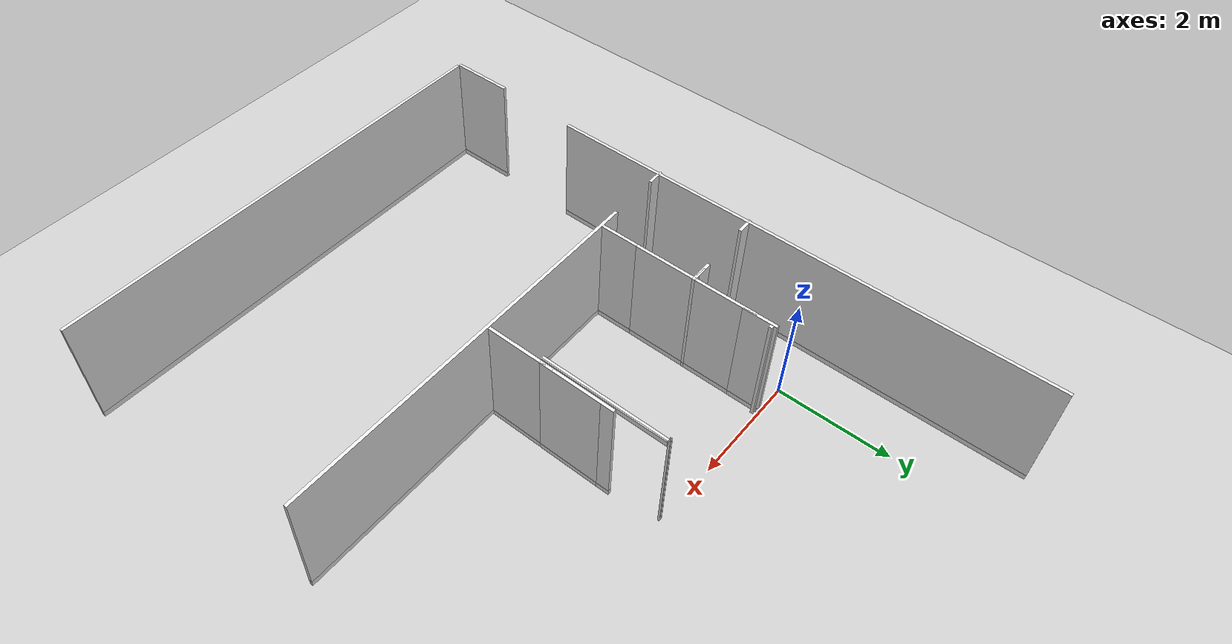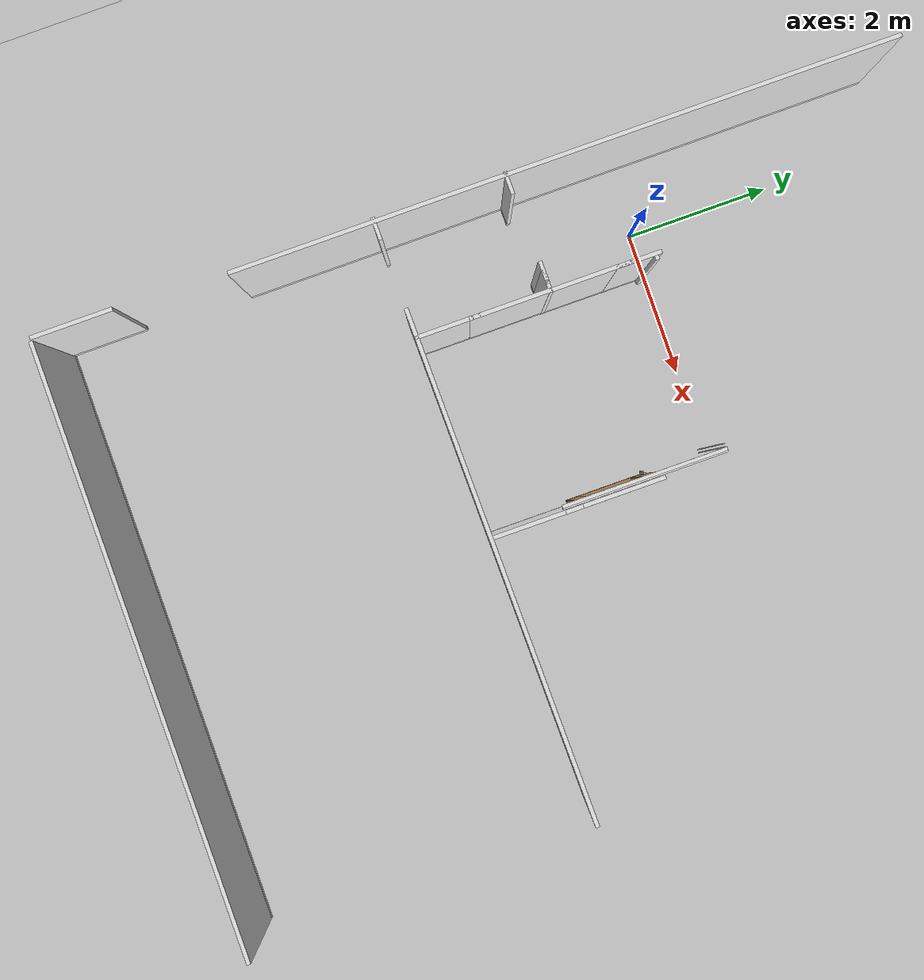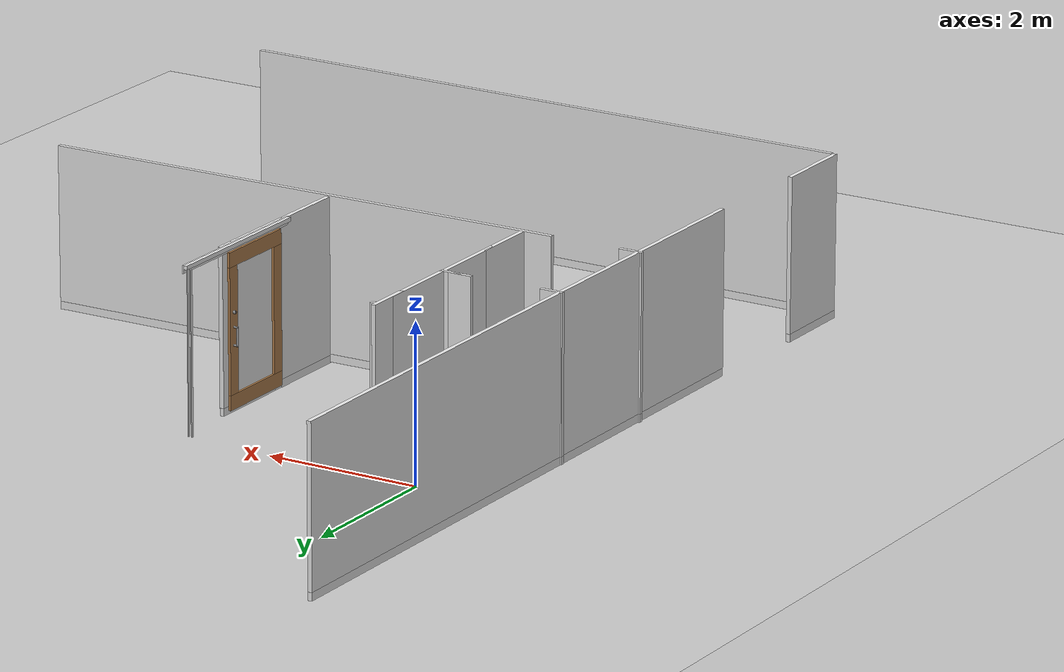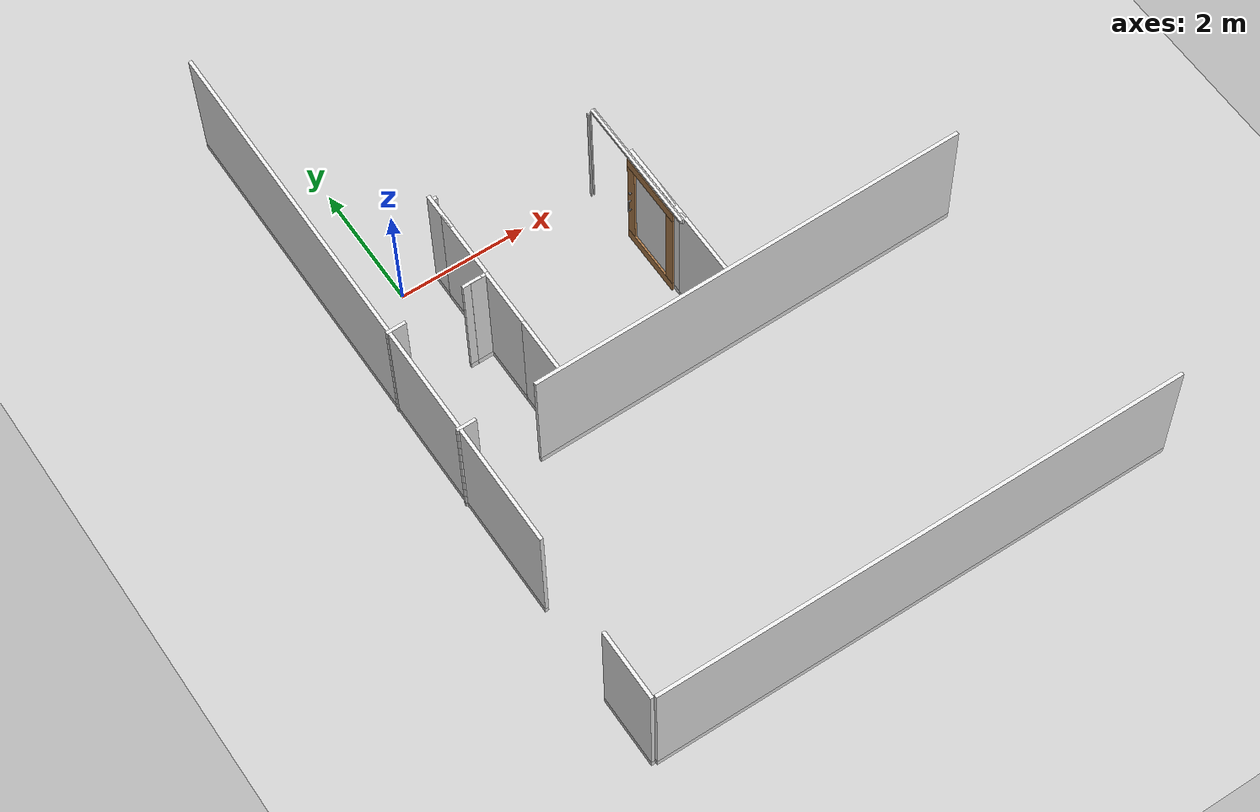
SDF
<sdf version="1.6">
 <world name="default">
  <model name="ground_plane">
   <static>1</static>
   <link name="link">
    <collision name="collision">
     <geometry><plane><normal>0 0 1</normal><size>100 100</size></plane></geometry>
     <surface><friction><ode><mu>100</mu><mu2>50</mu2></ode></friction></surface>
    </collision>
    <visual name="visual">
     <cast_shadows>0</cast_shadows>
     <geometry><plane><normal>0 0 1</normal><size>100 100</size></plane></geometry>
     <material>
      <script><uri>file://media/materials/scripts/gazebo.material</uri><name>Gazebo/Grey</name></script>
     </material>
    </visual>
   </link>
  </model>
  <model name="slim_wall_0_clone">
   <link name="link">
    <pose>-1.21711 0.435553 0 0 -0 0</pose>
    <inertial>
     <mass>12.4167</mass>
     <inertia><ixx>0</ixx><ixy>0</ixy><ixz>0</ixz><iyy>0</iyy><iyz>0</iyz><izz>0</izz></inertia>
    </inertial>
    <velocity_decay><linear>0</linear><angular>0</angular></velocity_decay>
    <visual name="bottom_frame">
     <pose>0 0 0.05 0 -0 0</pose>
     <geometry><box><size>0.048855 0.300624 0.1</size></box></geometry>
     <material>
      <script><uri>model://base_materials/color/scripts</uri><name>hsr_color/white</name></script>
      <ambient>1 1 1 1</ambient>
      <diffuse>0.5 0.5 0.5 1</diffuse>
      <specular>0 0 0 1</specular>
      <emissive>0 0 0 1</emissive>
     </material>
    </visual>
    <visual name="wall">
     <pose>0 0 1.095 0 -0 0</pose>
     <geometry><box><size>0.048855 0.300624 1.99</size></box></geometry>
     <material>
      <script>
       <uri>model://base_materials/wall/scripts</uri>
       <uri>model://base_materials/wall/textures</uri>
       <name>wall/white_noise</name>
      </script>
      <ambient>1 1 1 1</ambient>
      <diffuse>0.5 0.5 0.5 1</diffuse>
      <specular>0 0 0 1</specular>
      <emissive>0 0 0 1</emissive>
     </material>
    </visual>
    <collision name="collision_bottom_frame">
     <pose>0 0 0.05 0 -0 0</pose>
     <geometry><box><size>0.048855 0.300624 0.1</size></box></geometry>
     <surface>
      <friction>
       <ode><mu>1</mu><mu2>1</mu2><fdir1>0 0 0</fdir1><slip1>0</slip1><slip2>0</slip2></ode>
       <torsional>
        <coefficient>1</coefficient>
        <patch_radius>0</patch_radius>
        <surface_radius>0</surface_radius>
        <use_patch_radius>1</use_patch_radius>
        <ode><slip>0</slip></ode>
       </torsional>
      </friction>
      <bounce><restitution_coefficient>0</restitution_coefficient><threshold>1e+06</threshold></bounce>
      <contact>
       <collide_without_contact>0</collide_without_contact>
       <collide_without_contact_bitmask>1</collide_without_contact_bitmask>
       <collide_bitmask>1</collide_bitmask>
       <ode>
        <soft_cfm>0</soft_cfm>
        <soft_erp>0.2</soft_erp>
        <kp>1e+13</kp>
        <kd>1</kd>
        <max_vel>0.01</max_vel>
        <min_depth>0</min_depth>
       </ode>
       <bullet>
        <split_impulse>1</split_impulse>
        <split_impulse_penetration_threshold>-0.01</split_impulse_penetration_threshold>
        <soft_cfm>0</soft_cfm>
        <soft_erp>0.2</soft_erp>
        <kp>1e+13</kp>
        <kd>1</kd>
       </bullet>
      </contact>
     </surface>
    </collision>
    <collision name="collision_wall">
     <pose>0 0 1.095 0 -0 0</pose>
     <geometry><box><size>0.048855 0.300624 1.99</size></box></geometry>
     <surface>
      <friction>
       <ode><mu>1</mu><mu2>1</mu2><fdir1>0 0 0</fdir1><slip1>0</slip1><slip2>0</slip2></ode>
       <torsional>
        <coefficient>1</coefficient>
        <patch_radius>0</patch_radius>
        <surface_radius>0</surface_radius>
        <use_patch_radius>1</use_patch_radius>
        <ode><slip>0</slip></ode>
       </torsional>
      </friction>
      <bounce><restitution_coefficient>0</restitution_coefficient><threshold>1e+06</threshold></bounce>
      <contact>
       <collide_without_contact>0</collide_without_contact>
       <collide_without_contact_bitmask>1</collide_without_contact_bitmask>
       <collide_bitmask>1</collide_bitmask>
       <ode>
        <soft_cfm>0</soft_cfm>
        <soft_erp>0.2</soft_erp>
        <kp>1e+13</kp>
        <kd>1</kd>
        <max_vel>0.01</max_vel>
        <min_depth>0</min_depth>
       </ode>
       <bullet>
        <split_impulse>1</split_impulse>
        <split_impulse_penetration_threshold>-0.01</split_impulse_penetration_threshold>
        <soft_cfm>0</soft_cfm>
        <soft_erp>0.2</soft_erp>
        <kp>1e+13</kp>
        <kd>1</kd>
       </bullet>
      </contact>
     </surface>
    </collision>
   </link>
   <static>1</static>
   <pose>-0.462537 -2.07643 0 0 -0 1.58512</pose>
  </model>
  <model name="slim_wall_0_clone_0">
   <link name="link">
    <pose>-1.21711 0.435553 0 0 -0 0</pose>
    <inertial>
     <mass>12.4167</mass>
     <inertia><ixx>0</ixx><ixy>0</ixy><ixz>0</ixz><iyy>0</iyy><iyz>0</iyz><izz>0</izz></inertia>
    </inertial>
    <velocity_decay><linear>0</linear><angular>0</angular></velocity_decay>
    <visual name="bottom_frame">
     <pose>0 0 0.05 0 -0 0</pose>
     <geometry><box><size>0.048855 0.300624 0.1</size></box></geometry>
     <material>
      <script><uri>model://base_materials/color/scripts</uri><name>hsr_color/white</name></script>
      <ambient>1 1 1 1</ambient>
      <diffuse>0.5 0.5 0.5 1</diffuse>
      <specular>0 0 0 1</specular>
      <emissive>0 0 0 1</emissive>
     </material>
    </visual>
    <visual name="wall">
     <pose>0 0 1.095 0 -0 0</pose>
     <geometry><box><size>0.048855 0.300624 1.99</size></box></geometry>
     <material>
      <script>
       <uri>model://base_materials/wall/scripts</uri>
       <uri>model://base_materials/wall/textures</uri>
       <name>wall/white_noise</name>
      </script>
      <ambient>1 1 1 1</ambient>
      <diffuse>0.5 0.5 0.5 1</diffuse>
      <specular>0 0 0 1</specular>
      <emissive>0 0 0 1</emissive>
     </material>
    </visual>
    <collision name="collision_bottom_frame">
     <pose>0 0 0.05 0 -0 0</pose>
     <geometry><box><size>0.048855 0.300624 0.1</size></box></geometry>
     <surface>
      <friction>
       <ode><mu>1</mu><mu2>1</mu2><fdir1>0 0 0</fdir1><slip1>0</slip1><slip2>0</slip2></ode>
       <torsional>
        <coefficient>1</coefficient>
        <patch_radius>0</patch_radius>
        <surface_radius>0</surface_radius>
        <use_patch_radius>1</use_patch_radius>
        <ode><slip>0</slip></ode>
       </torsional>
      </friction>
      <bounce><restitution_coefficient>0</restitution_coefficient><threshold>1e+06</threshold></bounce>
      <contact>
       <collide_without_contact>0</collide_without_contact>
       <collide_without_contact_bitmask>1</collide_without_contact_bitmask>
       <collide_bitmask>1</collide_bitmask>
       <ode>
        <soft_cfm>0</soft_cfm>
        <soft_erp>0.2</soft_erp>
        <kp>1e+13</kp>
        <kd>1</kd>
        <max_vel>0.01</max_vel>
        <min_depth>0</min_depth>
       </ode>
       <bullet>
        <split_impulse>1</split_impulse>
        <split_impulse_penetration_threshold>-0.01</split_impulse_penetration_threshold>
        <soft_cfm>0</soft_cfm>
        <soft_erp>0.2</soft_erp>
        <kp>1e+13</kp>
        <kd>1</kd>
       </bullet>
      </contact>
     </surface>
    </collision>
    <collision name="collision_wall">
     <pose>0 0 1.095 0 -0 0</pose>
     <geometry><box><size>0.048855 0.300624 1.99</size></box></geometry>
     <surface>
      <friction>
       <ode><mu>1</mu><mu2>1</mu2><fdir1>0 0 0</fdir1><slip1>0</slip1><slip2>0</slip2></ode>
       <torsional>
        <coefficient>1</coefficient>
        <patch_radius>0</patch_radius>
        <surface_radius>0</surface_radius>
        <use_patch_radius>1</use_patch_radius>
        <ode><slip>0</slip></ode>
       </torsional>
      </friction>
      <bounce><restitution_coefficient>0</restitution_coefficient><threshold>1e+06</threshold></bounce>
      <contact>
       <collide_without_contact>0</collide_without_contact>
       <collide_without_contact_bitmask>1</collide_without_contact_bitmask>
       <collide_bitmask>1</collide_bitmask>
       <ode>
        <soft_cfm>0</soft_cfm>
        <soft_erp>0.2</soft_erp>
        <kp>1e+13</kp>
        <kd>1</kd>
        <max_vel>0.01</max_vel>
        <min_depth>0</min_depth>
       </ode>
       <bullet>
        <split_impulse>1</split_impulse>
        <split_impulse_penetration_threshold>-0.01</split_impulse_penetration_threshold>
        <soft_cfm>0</soft_cfm>
        <soft_erp>0.2</soft_erp>
        <kp>1e+13</kp>
        <kd>1</kd>
       </bullet>
      </contact>
     </surface>
    </collision>
   </link>
   <static>1</static>
   <pose>-0.45174 -0.316156 0 0 -0 1.58512</pose>
  </model>
  <model name="slim_wall_0_clone_1">
   <link name="link">
    <pose>-1.21711 0.435553 0 0 -0 0</pose>
    <inertial>
     <mass>12.4167</mass>
     <inertia><ixx>0</ixx><ixy>0</ixy><ixz>0</ixz><iyy>0</iyy><iyz>0</iyz><izz>0</izz></inertia>
    </inertial>
    <velocity_decay><linear>0</linear><angular>0</angular></velocity_decay>
    <visual name="bottom_frame">
     <pose>0 0 0.05 0 -0 0</pose>
     <geometry><box><size>0.048855 0.300624 0.1</size></box></geometry>
     <material>
      <script><uri>model://base_materials/color/scripts</uri><name>hsr_color/white</name></script>
      <ambient>1 1 1 1</ambient>
      <diffuse>0.5 0.5 0.5 1</diffuse>
      <specular>0 0 0 1</specular>
      <emissive>0 0 0 1</emissive>
     </material>
    </visual>
    <visual name="wall">
     <pose>0 0 1.095 0 -0 0</pose>
     <geometry><box><size>0.048855 0.300624 1.99</size></box></geometry>
     <material>
      <script>
       <uri>model://base_materials/wall/scripts</uri>
       <uri>model://base_materials/wall/textures</uri>
       <name>wall/white_noise</name>
      </script>
      <ambient>1 1 1 1</ambient>
      <diffuse>0.5 0.5 0.5 1</diffuse>
      <specular>0 0 0 1</specular>
      <emissive>0 0 0 1</emissive>
     </material>
    </visual>
    <collision name="collision_bottom_frame">
     <pose>0 0 0.05 0 -0 0</pose>
     <geometry><box><size>0.048855 0.300624 0.1</size></box></geometry>
     <surface>
      <friction>
       <ode><mu>1</mu><mu2>1</mu2><fdir1>0 0 0</fdir1><slip1>0</slip1><slip2>0</slip2></ode>
       <torsional>
        <coefficient>1</coefficient>
        <patch_radius>0</patch_radius>
        <surface_radius>0</surface_radius>
        <use_patch_radius>1</use_patch_radius>
        <ode><slip>0</slip></ode>
       </torsional>
      </friction>
      <bounce><restitution_coefficient>0</restitution_coefficient><threshold>1e+06</threshold></bounce>
      <contact>
       <collide_without_contact>0</collide_without_contact>
       <collide_without_contact_bitmask>1</collide_without_contact_bitmask>
       <collide_bitmask>1</collide_bitmask>
       <ode>
        <soft_cfm>0</soft_cfm>
        <soft_erp>0.2</soft_erp>
        <kp>1e+13</kp>
        <kd>1</kd>
        <max_vel>0.01</max_vel>
        <min_depth>0</min_depth>
       </ode>
       <bullet>
        <split_impulse>1</split_impulse>
        <split_impulse_penetration_threshold>-0.01</split_impulse_penetration_threshold>
        <soft_cfm>0</soft_cfm>
        <soft_erp>0.2</soft_erp>
        <kp>1e+13</kp>
        <kd>1</kd>
       </bullet>
      </contact>
     </surface>
    </collision>
    <collision name="collision_wall">
     <pose>0 0 1.095 0 -0 0</pose>
     <geometry><box><size>0.048855 0.300624 1.99</size></box></geometry>
     <surface>
      <friction>
       <ode><mu>1</mu><mu2>1</mu2><fdir1>0 0 0</fdir1><slip1>0</slip1><slip2>0</slip2></ode>
       <torsional>
        <coefficient>1</coefficient>
        <patch_radius>0</patch_radius>
        <surface_radius>0</surface_radius>
        <use_patch_radius>1</use_patch_radius>
        <ode><slip>0</slip></ode>
       </torsional>
      </friction>
      <bounce><restitution_coefficient>0</restitution_coefficient><threshold>1e+06</threshold></bounce>
      <contact>
       <collide_without_contact>0</collide_without_contact>
       <collide_without_contact_bitmask>1</collide_without_contact_bitmask>
       <collide_bitmask>1</collide_bitmask>
       <ode>
        <soft_cfm>0</soft_cfm>
        <soft_erp>0.2</soft_erp>
        <kp>1e+13</kp>
        <kd>1</kd>
        <max_vel>0.01</max_vel>
        <min_depth>0</min_depth>
       </ode>
       <bullet>
        <split_impulse>1</split_impulse>
        <split_impulse_penetration_threshold>-0.01</split_impulse_penetration_threshold>
        <soft_cfm>0</soft_cfm>
        <soft_erp>0.2</soft_erp>
        <kp>1e+13</kp>
        <kd>1</kd>
       </bullet>
      </contact>
     </surface>
    </collision>
   </link>
   <static>1</static>
   <pose>0.754581 -0.274826 0 0 -0 1.58512</pose>
  </model>
  <model name="slim_wall_0_clone_2">
   <link name="link">
    <pose>-1.21711 0.435553 0 0 -0 0</pose>
    <inertial>
     <mass>12.4167</mass>
     <inertia><ixx>0</ixx><ixy>0</ixy><ixz>0</ixz><iyy>0</iyy><iyz>0</iyz><izz>0</izz></inertia>
    </inertial>
    <velocity_decay><linear>0</linear><angular>0</angular></velocity_decay>
    <visual name="bottom_frame">
     <pose>0 0 0.05 0 -0 0</pose>
     <geometry><box><size>0.048855 0.300624 0.1</size></box></geometry>
     <material>
      <script><uri>model://base_materials/color/scripts</uri><name>hsr_color/white</name></script>
      <ambient>1 1 1 1</ambient>
      <diffuse>0.5 0.5 0.5 1</diffuse>
      <specular>0 0 0 1</specular>
      <emissive>0 0 0 1</emissive>
     </material>
    </visual>
    <visual name="wall">
     <pose>0 0 1.095 0 -0 0</pose>
     <geometry><box><size>0.048855 0.300624 1.99</size></box></geometry>
     <material>
      <script>
       <uri>model://base_materials/wall/scripts</uri>
       <uri>model://base_materials/wall/textures</uri>
       <name>wall/white_noise</name>
      </script>
      <ambient>1 1 1 1</ambient>
      <diffuse>0.5 0.5 0.5 1</diffuse>
      <specular>0 0 0 1</specular>
      <emissive>0 0 0 1</emissive>
     </material>
    </visual>
    <collision name="collision_bottom_frame">
     <pose>0 0 0.05 0 -0 0</pose>
     <geometry><box><size>0.048855 0.300624 0.1</size></box></geometry>
     <surface>
      <friction>
       <ode><mu>1</mu><mu2>1</mu2><fdir1>0 0 0</fdir1><slip1>0</slip1><slip2>0</slip2></ode>
       <torsional>
        <coefficient>1</coefficient>
        <patch_radius>0</patch_radius>
        <surface_radius>0</surface_radius>
        <use_patch_radius>1</use_patch_radius>
        <ode><slip>0</slip></ode>
       </torsional>
      </friction>
      <bounce><restitution_coefficient>0</restitution_coefficient><threshold>1e+06</threshold></bounce>
      <contact>
       <collide_without_contact>0</collide_without_contact>
       <collide_without_contact_bitmask>1</collide_without_contact_bitmask>
       <collide_bitmask>1</collide_bitmask>
       <ode>
        <soft_cfm>0</soft_cfm>
        <soft_erp>0.2</soft_erp>
        <kp>1e+13</kp>
        <kd>1</kd>
        <max_vel>0.01</max_vel>
        <min_depth>0</min_depth>
       </ode>
       <bullet>
        <split_impulse>1</split_impulse>
        <split_impulse_penetration_threshold>-0.01</split_impulse_penetration_threshold>
        <soft_cfm>0</soft_cfm>
        <soft_erp>0.2</soft_erp>
        <kp>1e+13</kp>
        <kd>1</kd>
       </bullet>
      </contact>
     </surface>
    </collision>
    <collision name="collision_wall">
     <pose>0 0 1.095 0 -0 0</pose>
     <geometry><box><size>0.048855 0.300624 1.99</size></box></geometry>
     <surface>
      <friction>
       <ode><mu>1</mu><mu2>1</mu2><fdir1>0 0 0</fdir1><slip1>0</slip1><slip2>0</slip2></ode>
       <torsional>
        <coefficient>1</coefficient>
        <patch_radius>0</patch_radius>
        <surface_radius>0</surface_radius>
        <use_patch_radius>1</use_patch_radius>
        <ode><slip>0</slip></ode>
       </torsional>
      </friction>
      <bounce><restitution_coefficient>0</restitution_coefficient><threshold>1e+06</threshold></bounce>
      <contact>
       <collide_without_contact>0</collide_without_contact>
       <collide_without_contact_bitmask>1</collide_without_contact_bitmask>
       <collide_bitmask>1</collide_bitmask>
       <ode>
        <soft_cfm>0</soft_cfm>
        <soft_erp>0.2</soft_erp>
        <kp>1e+13</kp>
        <kd>1</kd>
        <max_vel>0.01</max_vel>
        <min_depth>0</min_depth>
       </ode>
       <bullet>
        <split_impulse>1</split_impulse>
        <split_impulse_penetration_threshold>-0.01</split_impulse_penetration_threshold>
        <soft_cfm>0</soft_cfm>
        <soft_erp>0.2</soft_erp>
        <kp>1e+13</kp>
        <kd>1</kd>
       </bullet>
      </contact>
     </surface>
    </collision>
   </link>
   <static>1</static>
   <pose>0.874173 -0.274906 0 0 -0 1.58512</pose>
  </model>
  <model name="full_wall_55_1100_2090_0">
   <link name="link">
    <inertial>
     <mass>50</mass>
     <inertia><ixx>1</ixx><ixy>0</ixy><ixz>0</ixz><iyy>1</iyy><iyz>0</iyz><izz>1</izz></inertia>
    </inertial>
    <visual name="bottom_frame">
     <pose>0 0 0.05 0 -0 0</pose>
     <geometry><box><size>0.055 1.1 0.1</size></box></geometry>
     <material>
      <script><uri>model://base_materials/color/scripts</uri><name>hsr_color/white</name></script>
     </material>
    </visual>
    <collision name="collision_bottom_frame">
     <pose>0 0 0.05 0 -0 0</pose>
     <geometry><box><size>0.055 1.1 0.1</size></box></geometry>
    </collision>
    <visual name="wall">
     <pose>0 0 1.095 0 -0 0</pose>
     <geometry><box><size>0.055 1.1 1.99</size></box></geometry>
     <material>
      <script>
       <uri>model://base_materials/wall/scripts</uri>
       <uri>model://base_materials/wall/textures</uri>
       <name>wall/white_noise</name>
      </script>
     </material>
    </visual>
    <collision name="collision_wall">
     <pose>0 0 1.095 0 -0 0</pose>
     <geometry><box><size>0.055 1.1 1.99</size></box></geometry>
    </collision>
    <velocity_decay><linear>0</linear><angular>0</angular></velocity_decay>
   </link>
   <static>1</static>
   <pose>0.574353 -2.02901 0 0 -0 0</pose>
  </model>
  <model name="full_wall_55_1100_2090_1">
   <link name="link">
    <inertial>
     <mass>50</mass>
     <inertia><ixx>1</ixx><ixy>0</ixy><ixz>0</ixz><iyy>1</iyy><iyz>0</iyz><izz>1</izz></inertia>
    </inertial>
    <visual name="bottom_frame">
     <pose>0 0 0.05 0 -0 0</pose>
     <geometry><box><size>0.055 1.1 0.1</size></box></geometry>
     <material>
      <script><uri>model://base_materials/color/scripts</uri><name>hsr_color/white</name></script>
     </material>
    </visual>
    <collision name="collision_bottom_frame">
     <pose>0 0 0.05 0 -0 0</pose>
     <geometry><box><size>0.055 1.1 0.1</size></box></geometry>
    </collision>
    <visual name="wall">
     <pose>0 0 1.095 0 -0 0</pose>
     <geometry><box><size>0.055 1.1 1.99</size></box></geometry>
     <material>
      <script>
       <uri>model://base_materials/wall/scripts</uri>
       <uri>model://base_materials/wall/textures</uri>
       <name>wall/white_noise</name>
      </script>
     </material>
    </visual>
    <collision name="collision_wall">
     <pose>0 0 1.095 0 -0 0</pose>
     <geometry><box><size>0.055 1.1 1.99</size></box></geometry>
    </collision>
    <velocity_decay><linear>0</linear><angular>0</angular></velocity_decay>
   </link>
   <static>1</static>
   <pose>0.578006 -0.931267 0 0 -0 0</pose>
  </model>
  <model name="full_wall_55_600_2090">
   <link name="link">
    <inertial>
     <mass>50</mass>
     <inertia><ixx>1</ixx><ixy>0</ixy><ixz>0</ixz><iyy>1</iyy><iyz>0</iyz><izz>1</izz></inertia>
    </inertial>
    <visual name="bottom_frame">
     <pose>0 0 0.05 0 -0 0</pose>
     <geometry><box><size>0.055 0.6 0.1</size></box></geometry>
     <material>
      <script><uri>model://base_materials/color/scripts</uri><name>hsr_color/white</name></script>
     </material>
    </visual>
    <collision name="collision_bottom_frame">
     <pose>0 0 0.05 0 -0 0</pose>
     <geometry><box><size>0.055 0.6 0.1</size></box></geometry>
    </collision>
    <visual name="wall">
     <pose>0 0 1.095 0 -0 0</pose>
     <geometry><box><size>0.055 0.6 1.99</size></box></geometry>
     <material>
      <script>
       <uri>model://base_materials/wall/scripts</uri>
       <uri>model://base_materials/wall/textures</uri>
       <name>wall/white_noise</name>
      </script>
     </material>
    </visual>
    <collision name="collision_wall">
     <pose>0 0 1.095 0 -0 0</pose>
     <geometry><box><size>0.055 0.6 1.99</size></box></geometry>
    </collision>
    <velocity_decay><linear>0</linear><angular>0</angular></velocity_decay>
   </link>
   <static>1</static>
   <pose>0.5806 -0.313776 0 0 -0 0</pose>
  </model>
  <model name="full_wall_55_900_2090_0">
   <link name="link">
    <inertial>
     <mass>50</mass>
     <inertia><ixx>1</ixx><ixy>0</ixy><ixz>0</ixz><iyy>1</iyy><iyz>0</iyz><izz>1</izz></inertia>
    </inertial>
    <visual name="bottom_frame">
     <pose>0 0 0.05 0 -0 0</pose>
     <geometry><box><size>0.055 0.9 0.1</size></box></geometry>
     <material>
      <script><uri>model://base_materials/color/scripts</uri><name>hsr_color/white</name></script>
     </material>
    </visual>
    <collision name="collision_bottom_frame">
     <pose>0 0 0.05 0 -0 0</pose>
     <geometry><box><size>0.055 0.9 0.1</size></box></geometry>
    </collision>
    <visual name="wall">
     <pose>0 0 1.095 0 -0 0</pose>
     <geometry><box><size>0.055 0.9 1.99</size></box></geometry>
     <material>
      <script>
       <uri>model://base_materials/wall/scripts</uri>
       <uri>model://base_materials/wall/textures</uri>
       <name>wall/white_noise</name>
      </script>
     </material>
    </visual>
    <collision name="collision_wall">
     <pose>0 0 1.095 0 -0 0</pose>
     <geometry><box><size>0.055 0.9 1.99</size></box></geometry>
    </collision>
    <velocity_decay><linear>0</linear><angular>0</angular></velocity_decay>
   </link>
   <static>1</static>
   <pose>0.573697 -2.84416 0 0 -0 0</pose>
  </model>
  <model name="wall_frame_55_55_2090">
   <link name="link">
    <inertial>
     <mass>50</mass>
     <inertia><ixx>1</ixx><ixy>0</ixy><ixz>0</ixz><iyy>1</iyy><iyz>0</iyz><izz>1</izz></inertia>
    </inertial>
    <visual name="_frame">
     <pose>0 0 1.045 0 -0 0</pose>
     <geometry><box><size>0.055 0.055 2.09</size></box></geometry>
     <material>
      <script><uri>model://base_materials/color/scripts</uri><name>hsr_color/white</name></script>
     </material>
    </visual>
    <collision name="collision_frame">
     <pose>0 0 1.045 0 -0 0</pose>
     <geometry><box><size>0.055 0.055 2.09</size></box></geometry>
    </collision>
    <velocity_decay><linear>0</linear><angular>0</angular></velocity_decay>
   </link>
   <static>1</static>
   <pose>0.637221 -0.095123 0 0 -0 0</pose>
  </model>
  <model name="full_wall_55_1100_2090_2">
   <link name="link">
    <inertial>
     <mass>50</mass>
     <inertia><ixx>1</ixx><ixy>0</ixy><ixz>0</ixz><iyy>1</iyy><iyz>0</iyz><izz>1</izz></inertia>
    </inertial>
    <visual name="bottom_frame">
     <pose>0 0 0.05 0 -0 0</pose>
     <geometry><box><size>0.055 1.1 0.1</size></box></geometry>
     <material>
      <script><uri>model://base_materials/color/scripts</uri><name>hsr_color/white</name></script>
     </material>
    </visual>
    <collision name="collision_bottom_frame">
     <pose>0 0 0.05 0 -0 0</pose>
     <geometry><box><size>0.055 1.1 0.1</size></box></geometry>
    </collision>
    <visual name="wall">
     <pose>0 0 1.095 0 -0 0</pose>
     <geometry><box><size>0.055 1.1 1.99</size></box></geometry>
     <material>
      <script>
       <uri>model://base_materials/wall/scripts</uri>
       <uri>model://base_materials/wall/textures</uri>
       <name>wall/white_noise</name>
      </script>
     </material>
    </visual>
    <collision name="collision_wall">
     <pose>0 0 1.095 0 -0 0</pose>
     <geometry><box><size>0.055 1.1 1.99</size></box></geometry>
    </collision>
    <velocity_decay><linear>0</linear><angular>0</angular></velocity_decay>
   </link>
   <static>1</static>
   <pose>3.27026 -1.45916 -0.016667 0 -0 2e-06</pose>
  </model>
  <model name="full_wall_55_1100_2090_2_clone">
   <link name="link">
    <inertial>
     <mass>50</mass>
     <inertia><ixx>1</ixx><ixy>0</ixy><ixz>0</ixz><iyy>1</iyy><iyz>0</iyz><izz>1</izz></inertia>
    </inertial>
    <visual name="bottom_frame">
     <pose>0 0 0.05 0 -0 0</pose>
     <geometry><box><size>0.055 1.1 0.1</size></box></geometry>
     <material>
      <script><uri>model://base_materials/color/scripts</uri><name>hsr_color/white</name></script>
     </material>
    </visual>
    <collision name="collision_bottom_frame">
     <pose>0 0 0.05 0 -0 0</pose>
     <geometry><box><size>0.055 1.1 0.1</size></box></geometry>
    </collision>
    <visual name="wall">
     <pose>0 0 1.095 0 -0 0</pose>
     <geometry><box><size>0.055 1.1 1.99</size></box></geometry>
     <material>
      <script>
       <uri>model://base_materials/wall/scripts</uri>
       <uri>model://base_materials/wall/textures</uri>
       <name>wall/white_noise</name>
      </script>
     </material>
    </visual>
    <collision name="collision_wall">
     <pose>0 0 1.095 0 -0 0</pose>
     <geometry><box><size>0.055 1.1 1.99</size></box></geometry>
    </collision>
    <velocity_decay><linear>0</linear><angular>0</angular></velocity_decay>
   </link>
   <static>1</static>
   <pose>3.27086 -1.69063 -0.016667 0 -0 2e-06</pose>
  </model>
  <model name="full_wall_55_1100_2090_2_clone_clone">
   <link name="link">
    <inertial>
     <mass>50</mass>
     <inertia><ixx>1</ixx><ixy>0</ixy><ixz>0</ixz><iyy>1</iyy><iyz>0</iyz><izz>1</izz></inertia>
    </inertial>
    <visual name="bottom_frame">
     <pose>0 0 0.05 0 -0 0</pose>
     <geometry><box><size>0.055 1.1 0.1</size></box></geometry>
     <material>
      <script><uri>model://base_materials/color/scripts</uri><name>hsr_color/white</name></script>
     </material>
    </visual>
    <collision name="collision_bottom_frame">
     <pose>0 0 0.05 0 -0 0</pose>
     <geometry><box><size>0.055 1.1 0.1</size></box></geometry>
    </collision>
    <visual name="wall">
     <pose>0 0 1.095 0 -0 0</pose>
     <geometry><box><size>0.055 1.1 1.99</size></box></geometry>
     <material>
      <script>
       <uri>model://base_materials/wall/scripts</uri>
       <uri>model://base_materials/wall/textures</uri>
       <name>wall/white_noise</name>
      </script>
     </material>
    </visual>
    <collision name="collision_wall">
     <pose>0 0 1.095 0 -0 0</pose>
     <geometry><box><size>0.055 1.1 1.99</size></box></geometry>
    </collision>
    <velocity_decay><linear>0</linear><angular>0</angular></velocity_decay>
   </link>
   <static>1</static>
   <pose>3.26847 -2.69166 -0.016667 0 -0 2e-06</pose>
  </model>
  <model name="full_wall_55_1100_2090_5_clone">
   <link name="link">
    <inertial>
     <mass>50</mass>
     <inertia><ixx>1</ixx><ixy>0</ixy><ixz>0</ixz><iyy>1</iyy><iyz>0</iyz><izz>1</izz></inertia>
    </inertial>
    <visual name="bottom_frame">
     <pose>0 0 0.05 0 -0 0</pose>
     <geometry><box><size>0.055 1.1 0.1</size></box></geometry>
     <material>
      <script><uri>model://base_materials/color/scripts</uri><name>hsr_color/white</name></script>
     </material>
    </visual>
    <collision name="collision_bottom_frame">
     <pose>0 0 0.05 0 -0 0</pose>
     <geometry><box><size>0.055 1.1 0.1</size></box></geometry>
    </collision>
    <visual name="wall">
     <pose>0 0 1.095 0 -0 0</pose>
     <geometry><box><size>0.055 1.1 1.99</size></box></geometry>
     <material>
      <script>
       <uri>model://base_materials/wall/scripts</uri>
       <uri>model://base_materials/wall/textures</uri>
       <name>wall/white_noise</name>
      </script>
     </material>
    </visual>
    <collision name="collision_wall">
     <pose>0 0 1.095 0 -0 0</pose>
     <geometry><box><size>0.055 1.1 1.99</size></box></geometry>
    </collision>
    <velocity_decay><linear>0</linear><angular>0</angular></velocity_decay>
   </link>
   <static>1</static>
   <pose>-1.04004 -7.3157 0 0 -0 0</pose>
  </model>
  <model name="full_wall_55_8295_2090_0_clone">
   <link name="link">
    <inertial>
     <mass>50</mass>
     <inertia><ixx>1</ixx><ixy>0</ixy><ixz>0</ixz><iyy>1</iyy><iyz>0</iyz><izz>1</izz></inertia>
    </inertial>
    <visual name="bottom_frame">
     <pose>0 0 0.05 0 -0 0</pose>
     <geometry><box><size>0.055 8.295 0.1</size></box></geometry>
     <material>
      <script><uri>model://base_materials/color/scripts</uri><name>hsr_color/white</name></script>
     </material>
    </visual>
    <collision name="collision_bottom_frame">
     <pose>0 0 0.05 0 -0 0</pose>
     <geometry><box><size>0.055 8.295 0.1</size></box></geometry>
    </collision>
    <visual name="wall">
     <pose>0 0 1.095 0 -0 0</pose>
     <geometry><box><size>0.055 8.295 1.99</size></box></geometry>
     <material>
      <script>
       <uri>model://base_materials/wall/scripts</uri>
       <uri>model://base_materials/wall/textures</uri>
       <name>wall/white_noise</name>
      </script>
     </material>
    </visual>
    <collision name="collision_wall">
     <pose>0 0 1.095 0 -0 0</pose>
     <geometry><box><size>0.055 8.295 1.99</size></box></geometry>
    </collision>
    <velocity_decay><linear>0</linear><angular>0</angular></velocity_decay>
   </link>
   <static>1</static>
   <pose>3.15079 -7.88187 0 0 0 -1.57394</pose>
  </model>
  <model name="full_wall_outside/home">
   <link name="link">
    <pose>0 -0.134922 0 0 -0 0</pose>
    <inertial>
     <mass>41.9092</mass>
     <inertia><ixx>182.656</ixx><ixy>0</ixy><ixz>0</ixz><iyy>13.8409</iyy><iyz>0</iyz><izz>168.836</izz></inertia>
    </inertial>
    <velocity_decay><linear>0</linear><angular>0</angular></velocity_decay>
    <visual name="bottom_frame">
     <pose>0 0 0.05 0 -0 0</pose>
     <geometry><box><size>0.055 6.95272 0.1</size></box></geometry>
     <material>
      <script><uri>model://base_materials/color/scripts</uri><name>hsr_color/white</name></script>
      <ambient>1 1 1 1</ambient>
      <diffuse>0.5 0.5 0.5 1</diffuse>
      <specular>0 0 0 1</specular>
      <emissive>0 0 0 1</emissive>
     </material>
    </visual>
    <visual name="wall">
     <pose>0 0 1.095 0 -0 0</pose>
     <geometry><box><size>0.055 6.95272 1.99</size></box></geometry>
     <material>
      <script>
       <uri>model://base_materials/wall/scripts</uri>
       <uri>model://base_materials/wall/textures</uri>
       <name>wall/white_noise</name>
      </script>
      <ambient>1 1 1 1</ambient>
      <diffuse>0.5 0.5 0.5 1</diffuse>
      <specular>0 0 0 1</specular>
      <emissive>0 0 0 1</emissive>
     </material>
    </visual>
    <collision name="collision_bottom_frame">
     <pose>0 0 0.05 0 -0 0</pose>
     <geometry><box><size>0.055 6.95272 0.1</size></box></geometry>
     <surface>
      <friction>
       <ode><mu>1</mu><mu2>1</mu2><fdir1>0 0 0</fdir1><slip1>0</slip1><slip2>0</slip2></ode>
       <torsional>
        <coefficient>1</coefficient>
        <patch_radius>0</patch_radius>
        <surface_radius>0</surface_radius>
        <use_patch_radius>1</use_patch_radius>
        <ode><slip>0</slip></ode>
       </torsional>
      </friction>
      <bounce><restitution_coefficient>0</restitution_coefficient><threshold>1e+06</threshold></bounce>
      <contact>
       <collide_without_contact>0</collide_without_contact>
       <collide_without_contact_bitmask>1</collide_without_contact_bitmask>
       <collide_bitmask>1</collide_bitmask>
       <ode>
        <soft_cfm>0</soft_cfm>
        <soft_erp>0.2</soft_erp>
        <kp>1e+13</kp>
        <kd>1</kd>
        <max_vel>0.01</max_vel>
        <min_depth>0</min_depth>
       </ode>
       <bullet>
        <split_impulse>1</split_impulse>
        <split_impulse_penetration_threshold>-0.01</split_impulse_penetration_threshold>
        <soft_cfm>0</soft_cfm>
        <soft_erp>0.2</soft_erp>
        <kp>1e+13</kp>
        <kd>1</kd>
       </bullet>
      </contact>
     </surface>
    </collision>
    <collision name="collision_wall">
     <pose>0 0 1.095 0 -0 0</pose>
     <geometry><box><size>0.055 6.95272 1.99</size></box></geometry>
     <surface>
      <friction>
       <ode><mu>1</mu><mu2>1</mu2><fdir1>0 0 0</fdir1><slip1>0</slip1><slip2>0</slip2></ode>
       <torsional>
        <coefficient>1</coefficient>
        <patch_radius>0</patch_radius>
        <surface_radius>0</surface_radius>
        <use_patch_radius>1</use_patch_radius>
        <ode><slip>0</slip></ode>
       </torsional>
      </friction>
      <bounce><restitution_coefficient>0</restitution_coefficient><threshold>1e+06</threshold></bounce>
      <contact>
       <collide_without_contact>0</collide_without_contact>
       <collide_without_contact_bitmask>1</collide_without_contact_bitmask>
       <collide_bitmask>1</collide_bitmask>
       <ode>
        <soft_cfm>0</soft_cfm>
        <soft_erp>0.2</soft_erp>
        <kp>1e+13</kp>
        <kd>1</kd>
        <max_vel>0.01</max_vel>
        <min_depth>0</min_depth>
       </ode>
       <bullet>
        <split_impulse>1</split_impulse>
        <split_impulse_penetration_threshold>-0.01</split_impulse_penetration_threshold>
        <soft_cfm>0</soft_cfm>
        <soft_erp>0.2</soft_erp>
        <kp>1e+13</kp>
        <kd>1</kd>
       </bullet>
      </contact>
     </surface>
    </collision>
   </link>
   <static>1</static>
   <pose>3.7943 -3.23239 0 0 0 -1.5564</pose>
  </model>
  <model name="full_wall_55_8295_2090">
   <link name="link">
    <inertial>
     <mass>54.1823</mass>
     <inertia><ixx>382.705</ixx><ixy>0</ixy><ixz>0</ixz><iyy>17.8943</iyy><iyz>0</iyz><izz>364.838</izz></inertia>
    </inertial>
    <velocity_decay><linear>0</linear><angular>0</angular></velocity_decay>
    <pose>0 -0.705123 0 0 -0 0</pose>
    <visual name="wall">
     <pose>0 0 1.095 0 -0 0</pose>
     <geometry><box><size>0.055 8.98885 1.99</size></box></geometry>
     <material>
      <script>
       <uri>model://base_materials/wall/scripts</uri>
       <uri>model://base_materials/wall/textures</uri>
       <name>wall/white_noise</name>
      </script>
     </material>
    </visual>
    <visual name="bottom_frame">
     <pose>0 0 0.05 0 -0 0</pose>
     <geometry><box><size>0.055 8.98885 0.1</size></box></geometry>
     <material>
      <script><uri>model://base_materials/color/scripts</uri><name>hsr_color/white</name></script>
     </material>
    </visual>
    <collision name="collision_bottom_frame">
     <pose>0 0 0.05 0 -0 0</pose>
     <geometry><box><size>0.055 8.98885 0.1</size></box></geometry>
     <surface>
      <friction>
       <ode><mu>1</mu><mu2>1</mu2><fdir1>0 0 0</fdir1><slip1>0</slip1><slip2>0</slip2></ode>
       <torsional>
        <coefficient>1</coefficient>
        <patch_radius>0</patch_radius>
        <surface_radius>0</surface_radius>
        <use_patch_radius>1</use_patch_radius>
        <ode><slip>0</slip></ode>
       </torsional>
      </friction>
      <bounce><restitution_coefficient>0</restitution_coefficient><threshold>1e+06</threshold></bounce>
      <contact>
       <collide_without_contact>0</collide_without_contact>
       <collide_without_contact_bitmask>1</collide_without_contact_bitmask>
       <collide_bitmask>1</collide_bitmask>
       <ode>
        <soft_cfm>0</soft_cfm>
        <soft_erp>0.2</soft_erp>
        <kp>1e+13</kp>
        <kd>1</kd>
        <max_vel>0.01</max_vel>
        <min_depth>0</min_depth>
       </ode>
       <bullet>
        <split_impulse>1</split_impulse>
        <split_impulse_penetration_threshold>-0.01</split_impulse_penetration_threshold>
        <soft_cfm>0</soft_cfm>
        <soft_erp>0.2</soft_erp>
        <kp>1e+13</kp>
        <kd>1</kd>
       </bullet>
      </contact>
     </surface>
    </collision>
    <collision name="collision_wall">
     <pose>0 0 1.095 0 -0 0</pose>
     <geometry><box><size>0.055 8.98885 1.99</size></box></geometry>
     <surface>
      <friction>
       <ode><mu>1</mu><mu2>1</mu2><fdir1>0 0 0</fdir1><slip1>0</slip1><slip2>0</slip2></ode>
       <torsional>
        <coefficient>1</coefficient>
        <patch_radius>0</patch_radius>
        <surface_radius>0</surface_radius>
        <use_patch_radius>1</use_patch_radius>
        <ode><slip>0</slip></ode>
       </torsional>
      </friction>
      <bounce><restitution_coefficient>0</restitution_coefficient><threshold>1e+06</threshold></bounce>
      <contact>
       <collide_without_contact>0</collide_without_contact>
       <collide_without_contact_bitmask>1</collide_without_contact_bitmask>
       <collide_bitmask>1</collide_bitmask>
       <ode>
        <soft_cfm>0</soft_cfm>
        <soft_erp>0.2</soft_erp>
        <kp>1e+13</kp>
        <kd>1</kd>
        <max_vel>0.01</max_vel>
        <min_depth>0</min_depth>
       </ode>
       <bullet>
        <split_impulse>1</split_impulse>
        <split_impulse_penetration_threshold>-0.01</split_impulse_penetration_threshold>
        <soft_cfm>0</soft_cfm>
        <soft_erp>0.2</soft_erp>
        <kp>1e+13</kp>
        <kd>1</kd>
       </bullet>
      </contact>
     </surface>
    </collision>
   </link>
   <static>1</static>
   <pose>-0.979337 -0.051627 0 0 -0 0</pose>
  </model>
  <model name="sliding_door_55_1100_2090">
   <link name="link">
    <inertial>
     <mass>50</mass>
     <inertia><ixx>1</ixx><ixy>0</ixy><ixz>0</ixz><iyy>1</iyy><iyz>0</iyz><izz>1</izz></inertia>
    </inertial>
    <visual name="top_guard">
     <pose>0.0225 0 2.065 0 -0 0</pose>
     <geometry><box><size>0.045 2.2 0.05</size></box></geometry>
     <material>
      <script><uri>model://base_materials/color/scripts</uri><name>hsr_color/white</name></script>
     </material>
    </visual>
    <collision name="collision_top_guard">
     <pose>0.0225 0 2.065 0 -0 0</pose>
     <geometry><box><size>0.045 2.2 0.05</size></box></geometry>
    </collision>
    <visual name="front_guard">
     <pose>0.055 0 2.04 0 -0 0</pose>
     <geometry><box><size>0.02 2.2 0.1</size></box></geometry>
     <material>
      <script><uri>model://base_materials/color/scripts</uri><name>hsr_color/white</name></script>
     </material>
    </visual>
    <collision name="collision_front_guard">
     <pose>0.055 0 2.04 0 -0 0</pose>
     <geometry><box><size>0.02 2.2 0.1</size></box></geometry>
    </collision>
    <visual name="top_frame">
     <pose>0.0225 -0.35 1.9075 0 -0 0</pose>
     <geometry><box><size>0.03 1.1 0.185</size></box></geometry>
     <material>
      <script><uri>model://base_materials/wood/scripts/wood.material</uri><name>base_materials/wood</name></script>
     </material>
    </visual>
    <collision name="collision_top_frame">
     <pose>0.0225 -0.35 1.9075 0 -0 0</pose>
     <geometry><box><size>0.03 1.1 0.185</size></box></geometry>
    </collision>
    <visual name="right_frame">
     <pose>0.0225 0.1175 1.025 0 -0 0</pose>
     <geometry><box><size>0.03 0.165 1.58</size></box></geometry>
     <material>
      <script><uri>model://base_materials/wood/scripts/wood.material</uri><name>base_materials/wood</name></script>
     </material>
    </visual>
    <collision name="collision_right_frame">
     <pose>0.0225 0.1175 1.025 0 -0 0</pose>
     <geometry><box><size>0.03 0.165 1.58</size></box></geometry>
    </collision>
    <visual name="left_frame">
     <pose>0.0225 -0.8175 1.025 0 -0 0</pose>
     <geometry><box><size>0.03 0.165 1.58</size></box></geometry>
     <material>
      <script><uri>model://base_materials/wood/scripts/wood.material</uri><name>base_materials/wood</name></script>
     </material>
    </visual>
    <collision name="collision_left_frame">
     <pose>0.0225 -0.8175 1.025 0 -0 0</pose>
     <geometry><box><size>0.03 0.165 1.58</size></box></geometry>
    </collision>
    <visual name="bottom_frame">
     <pose>0.0225 -0.35 0.1425 0 -0 0</pose>
     <geometry><box><size>0.03 1.1 0.185</size></box></geometry>
     <material>
      <script><uri>model://base_materials/wood/scripts/wood.material</uri><name>base_materials/wood</name></script>
     </material>
    </visual>
    <collision name="collision_bottom_frame">
     <pose>0.0225 -0.35 0.1425 0 -0 0</pose>
     <geometry><box><size>0.03 1.1 0.185</size></box></geometry>
    </collision>
    <visual name="handle_top_frame">
     <pose>0.0225 0.1175 1.0675 3.14159 1.57079 3.14159</pose>
     <geometry><cylinder><radius>0.0125</radius><length>0.125</length></cylinder></geometry>
     <material>
      <script><uri>model://base_materials/color/scripts</uri><name>hsr_color/grey</name></script>
     </material>
    </visual>
    <collision name="collision_handle_top_frame">
     <pose>0.0225 0.1175 1.0675 3.14159 1.57079 3.14159</pose>
     <geometry><cylinder><radius>0.0125</radius><length>0.125</length></cylinder></geometry>
    </collision>
    <visual name="handle_bottom_frame">
     <pose>0.0225 0.1175 0.8425 3.14159 1.57079 3.14159</pose>
     <geometry><cylinder><radius>0.0125</radius><length>0.125</length></cylinder></geometry>
     <material>
      <script><uri>model://base_materials/color/scripts</uri><name>hsr_color/grey</name></script>
     </material>
    </visual>
    <collision name="collision_handle_bottom_frame">
     <pose>0.0225 0.1175 0.8425 3.14159 1.57079 3.14159</pose>
     <geometry><cylinder><radius>0.0125</radius><length>0.125</length></cylinder></geometry>
    </collision>
    <visual name="handle_front_frame">
     <pose>0.085 0.1175 0.955 0 -0 0</pose>
     <geometry><cylinder><radius>0.0125</radius><length>0.225</length></cylinder></geometry>
     <material>
      <script><uri>model://base_materials/color/scripts</uri><name>hsr_color/grey</name></script>
     </material>
    </visual>
    <collision name="collision_handle_front_frame">
     <pose>0.085 0.1175 0.955 0 -0 0</pose>
     <geometry><cylinder><radius>0.0125</radius><length>0.225</length></cylinder></geometry>
    </collision>
    <visual name="handle_back_frame">
     <pose>-0.04 0.1175 0.955 0 -0 0</pose>
     <geometry><cylinder><radius>0.0125</radius><length>0.225</length></cylinder></geometry>
     <material>
      <script><uri>model://base_materials/color/scripts</uri><name>hsr_color/grey</name></script>
     </material>
    </visual>
    <collision name="collision_handle_back_frame">
     <pose>-0.04 0.1175 0.955 0 -0 0</pose>
     <geometry><cylinder><radius>0.0125</radius><length>0.225</length></cylinder></geometry>
    </collision>
    <visual name="handle_front_top_corner">
     <pose>0.085 0.1175 1.0675 0 -0 0</pose>
     <geometry><sphere><radius>0.0125</radius></sphere></geometry>
     <material>
      <script><uri>model://base_materials/color/scripts</uri><name>hsr_color/grey</name></script>
     </material>
    </visual>
    <collision name="collision_handle_front_top_corner">
     <pose>0.085 0.1175 1.0675 0 -0 0</pose>
     <geometry><sphere><radius>0.0125</radius></sphere></geometry>
    </collision>
    <visual name="handle_front_bottom_corner">
     <pose>0.085 0.1175 0.8425 0 -0 0</pose>
     <geometry><sphere><radius>0.0125</radius></sphere></geometry>
     <material>
      <script><uri>model://base_materials/color/scripts</uri><name>hsr_color/grey</name></script>
     </material>
    </visual>
    <collision name="collision_handle_front_bottom_corner">
     <pose>0.085 0.1175 0.8425 0 -0 0</pose>
     <geometry><sphere><radius>0.0125</radius></sphere></geometry>
    </collision>
    <visual name="handle_back_top_corner">
     <pose>-0.04 0.1175 1.0675 0 -0 0</pose>
     <geometry><sphere><radius>0.0125</radius></sphere></geometry>
     <material>
      <script><uri>model://base_materials/color/scripts</uri><name>hsr_color/grey</name></script>
     </material>
    </visual>
    <collision name="collision_handle_back_top_corner">
     <pose>-0.04 0.1175 1.0675 0 -0 0</pose>
     <geometry><sphere><radius>0.0125</radius></sphere></geometry>
    </collision>
    <visual name="handle_back_bottom_corner">
     <pose>-0.04 0.1175 0.8425 0 -0 0</pose>
     <geometry><sphere><radius>0.0125</radius></sphere></geometry>
     <material>
      <script><uri>model://base_materials/color/scripts</uri><name>hsr_color/grey</name></script>
     </material>
    </visual>
    <collision name="collision_handle_back_bottom_corner">
     <pose>-0.04 0.1175 0.8425 0 -0 0</pose>
     <geometry><sphere><radius>0.0125</radius></sphere></geometry>
    </collision>
    <visual name="handle_lock1">
     <pose>0.0225 0.1175 1.25 3.14159 1.57079 3.14159</pose>
     <geometry><cylinder><radius>0.02</radius><length>0.08</length></cylinder></geometry>
     <material>
      <script><uri>model://base_materials/color/scripts</uri><name>hsr_color/grey</name></script>
     </material>
    </visual>
    <collision name="collision_handle_lock1">
     <pose>0.0225 0.1175 1.25 3.14159 1.57079 3.14159</pose>
     <geometry><cylinder><radius>0.02</radius><length>0.08</length></cylinder></geometry>
    </collision>
    <visual name="handle_lock2">
     <pose>0.0225 0.1175 1.25 3.14159 1.57079 3.14159</pose>
     <geometry><cylinder><radius>0.015</radius><length>0.09</length></cylinder></geometry>
     <material>
      <script><uri>model://base_materials/color/scripts</uri><name>hsr_color/grey</name></script>
     </material>
    </visual>
    <collision name="collision_handle_lock2">
     <pose>0.0225 0.1175 1.25 3.14159 1.57079 3.14159</pose>
     <geometry><cylinder><radius>0.015</radius><length>0.09</length></cylinder></geometry>
    </collision>
    <velocity_decay><linear>0</linear><angular>0</angular></velocity_decay>
   </link>
   <static>1</static>
   <pose>3.16897 -1.16226 0 0 -0 0</pose>
  </model>
  <model name="hinged_door_stopper">
   <link name="door_frame">
    <visual name="stopper">
     <pose>0.0225 0.0175 1.025 0 -0 0</pose>
     <geometry><box><size>0.01 0.035 2.05</size></box></geometry>
     <material>
      <script><uri>model://base_materials/color/scripts</uri><name>hsr_color/white</name></script>
     </material>
    </visual>
    <collision name="collision_frame_1">
     <pose>0.0225 0.0175 1.025 0 -0 0</pose>
     <geometry><box><size>0.01 0.035 2.05</size></box></geometry>
    </collision>
    <visual name="frame_2">
     <pose>-0.0225 0.0175 1.025 0 -0 0</pose>
     <geometry><box><size>0.01 0.035 2.05</size></box></geometry>
     <material>
      <script><uri>model://base_materials/color/scripts</uri><name>hsr_color/white</name></script>
     </material>
    </visual>
    <collision name="collision_frame_2">
     <pose>-0.0225 0.0175 1.025 0 -0 0</pose>
     <geometry><box><size>0.01 0.035 2.05</size></box></geometry>
    </collision>
    <inertial>
     <inertia><ixx>1</ixx><ixy>0</ixy><ixz>0</ixz><iyy>1</iyy><iyz>0</iyz><izz>1</izz></inertia>
     <mass>1</mass>
    </inertial>
   </link>
   <static>0</static>
   <pose>3.14805 -0.086772 8.9e-05 0.001274 -0.003226 -0</pose>
  </model>
 </world>
</sdf>
